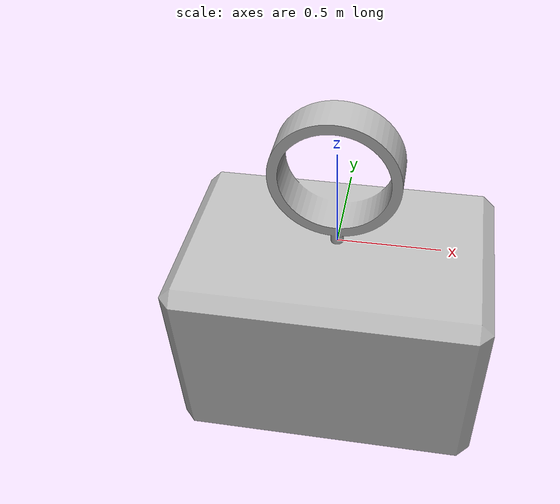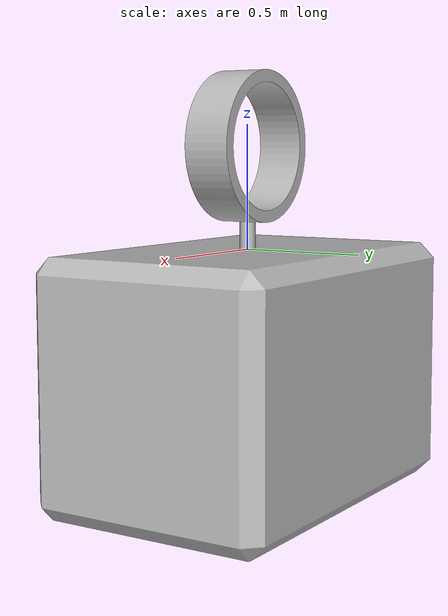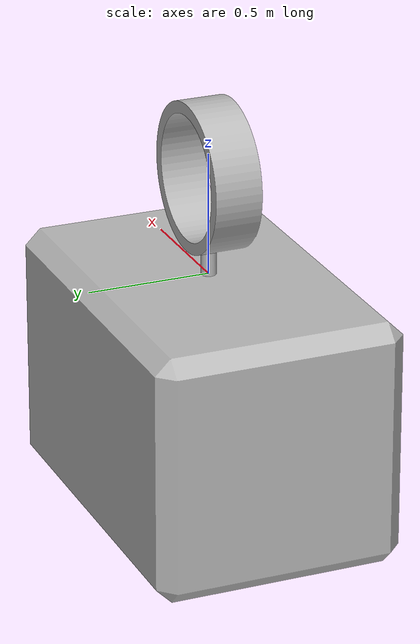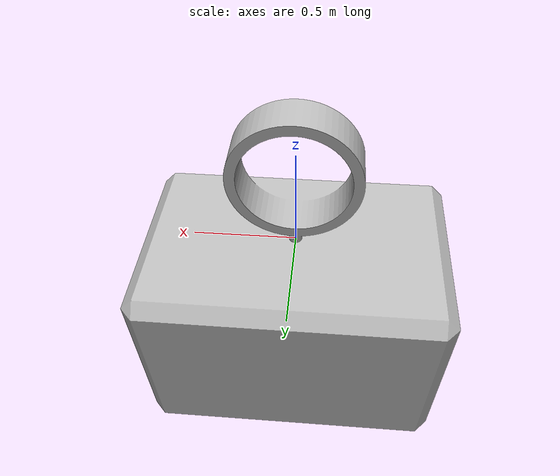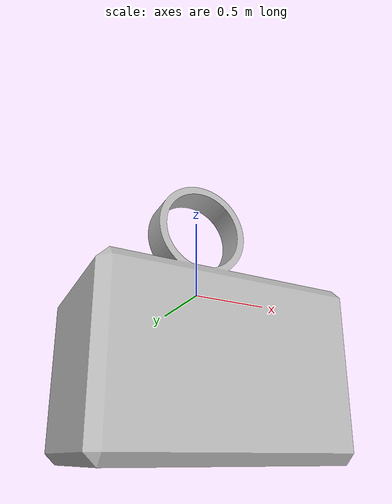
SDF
<sdf version="1.6">
  <model name="fragments_5lb">
    <link name="link">
    <visual name='visual'>
      <geometry>
        <mesh>
          <uri>model://fragments_5lb/meshes/fragments_5lb.stl</uri>
	  <scale>0.01 0.01 0.01</scale>
        </mesh>
      </geometry>
    </visual>

    <collision name='collision'>
      <geometry>
        <mesh>
          <uri>model://fragments_5lb/meshes/fragments_5lb.stl</uri>
	        <scale>0.01 0.01 0.01</scale>
        </mesh>
      </geometry>
    </collision>

    </link>
  </model>
</sdf>
